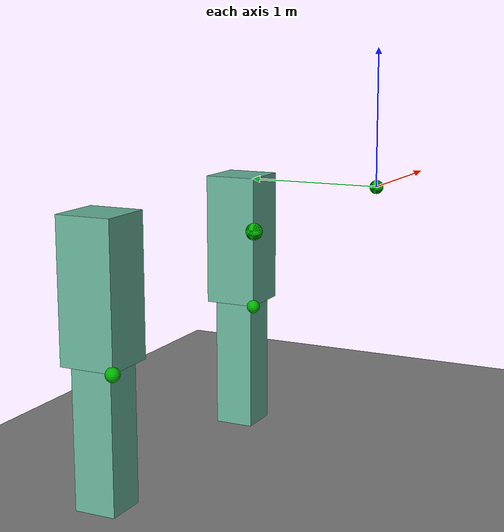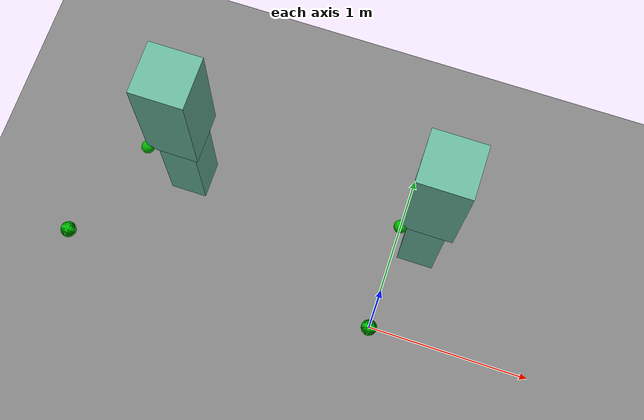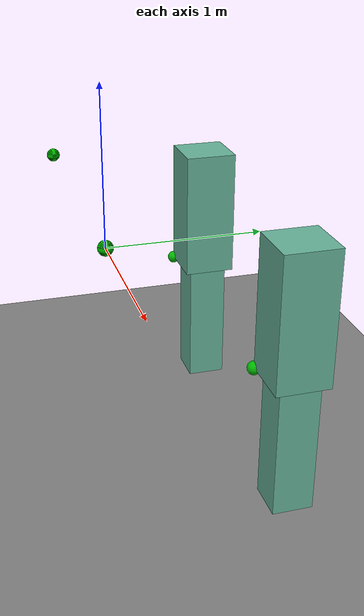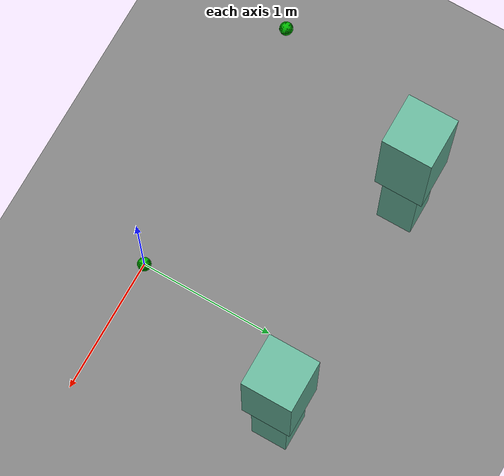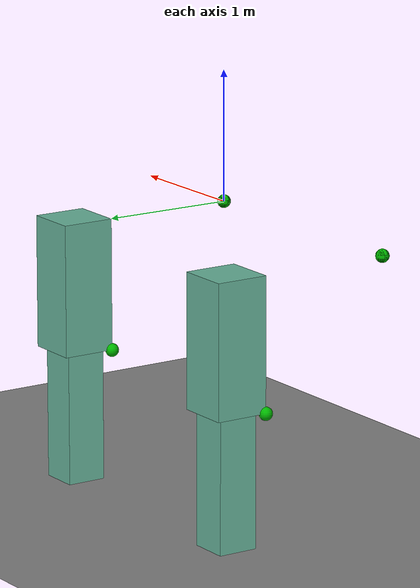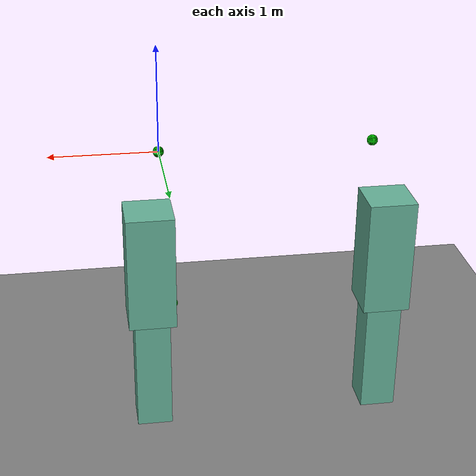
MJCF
<mujoco model="Equivalent Connects and Welds defined with sites and bodies">
  <option viscosity="1">
    <flag contact="disable"/>
  </option>

  <visual>
    <scale framewidth="0.05" framelength="0.4"/>
  </visual>

  <default>
    <default class="box">
      <geom type="box" size=".2" fromto=".2 .2 0 .2 .2 -1" rgba=".4 .7 .6 1"/>
    </default>
    <site rgba=".0 .7 0 1" size="0.05"/>
  </default>

  <worldbody>
    <geom pos="0 0 -2" type="plane" size="10 10 .01"/>
    <light pos="0 0 20"/>

    <site name="a1" pos="-2 0 0" euler="-90 0 0"/>
    <body name="a" pos="-2 1 0">
      <freejoint/>
      <geom class="box"/>
      <site name="a2" pos="0 -1 0"/>
      <body pos="0 0 -1">
        <geom class="box" size=".15"/>
        <site name="a_sensor"/>
      </body>
    </body>

    <site name="b1" euler="-90 0 0"/>
    <body name="b" pos="0 1 0">
      <freejoint/>
      <geom class="box"/>
      <site name="b2" pos="0 -1 0"/>
      <body pos="0 0 -1">
        <geom class="box" size=".15"/>
        <site name="b_sensor"/>
      </body>
    </body>
  </worldbody>

  <equality>
    <!-- equivalent connect and weld constraints defined with sites (enabled) and bodies (disabled) -->
    <connect name="connect site" site1="a1"    site2="a2"    active="true"/>
    <connect name="connect body" body1="a"     body2="world" active="false" anchor="0 -1 0"/>
    <weld    name="weld site"    site1="b1"    site2="b2"    active="true"/>
    <weld    name="weld body"    body1="world" body2="b"     active="false" anchor="0 -1 0" relpose="0 0 0 1 -1 0 0"/>
  </equality>

  <sensor>
    <force  name="a_force"  site="a_sensor"/>
    <torque name="a_torque" site="a_sensor"/>
    <force  name="b_force"  site="b_sensor"/>
    <torque name="b_torque" site="b_sensor"/>
  </sensor>
</mujoco>
